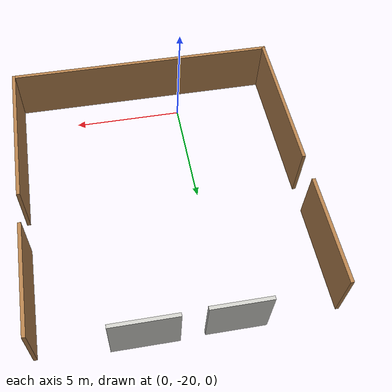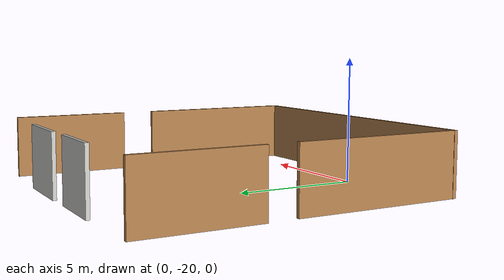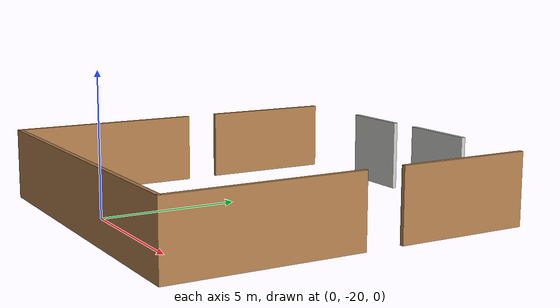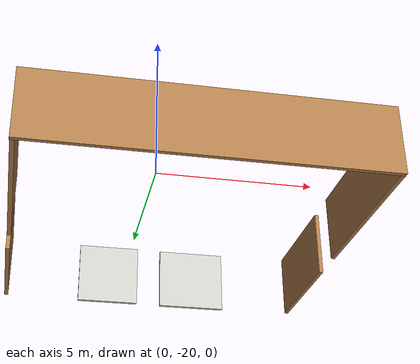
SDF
<?xml version='1.0'?>
<sdf version='1.7'>
  <model name='my_husky_vs_door'>
    <pose>1.57998 -10.6966 0 0 -0 0</pose>
    <link name='Wall_11'>
      <collision name='Wall_11_Collision'>
        <geometry>
          <box>
            <size>4.75 0.15 2.5</size>
          </box>
        </geometry>
        <pose>0 0 1.25 0 -0 0</pose>
      </collision>
      <visual name='Wall_11_Visual'>
        <pose>0 0 1.25 0 -0 0</pose>
        <geometry>
          <box>
            <size>4.75 0.15 2.5</size>
          </box>
        </geometry>
        <material>
          <script>
            <uri>file://media/materials/scripts/gazebo.material</uri>
            <name>Gazebo/Wood</name>
          </script>
          <ambient>1 1 1 1</ambient>
        </material>
        <meta>
          <layer>0</layer>
        </meta>
      </visual>
      <pose>-6.06402 -0.321553 0 0 -0 -1.5708</pose>
    </link>
    <link name='Wall_17'>
      <collision name='Wall_17_Collision'>
        <geometry>
          <box>
            <size>12.25 0.15 2.5</size>
          </box>
        </geometry>
        <pose>0 0 1.25 0 -0 0</pose>
      </collision>
      <visual name='Wall_17_Visual'>
        <pose>0 0 1.25 0 -0 0</pose>
        <geometry>
          <box>
            <size>12.25 0.15 2.5</size>
          </box>
        </geometry>
        <material>
          <script>
            <uri>file://media/materials/scripts/gazebo.material</uri>
            <name>Gazebo/Wood</name>
          </script>
          <ambient>1 1 1 1</ambient>
        </material>
        <meta>
          <layer>0</layer>
        </meta>
      </visual>
      <pose>0.01402 -10.6216 0 0 -0 3.14159</pose>
    </link>
    <link name='Wall_19'>
      <collision name='Wall_19_Collision'>
        <geometry>
          <box>
            <size>6.75 0.15 2.5</size>
          </box>
        </geometry>
        <pose>0 0 1.25 0 -0 0</pose>
      </collision>
      <visual name='Wall_19_Visual'>
        <pose>0 0 1.25 0 -0 0</pose>
        <geometry>
          <box>
            <size>6.75 0.15 2.5</size>
          </box>
        </geometry>
        <material>
          <script>
            <uri>file://media/materials/scripts/gazebo.material</uri>
            <name>Gazebo/Wood</name>
          </script>
          <ambient>1 1 1 1</ambient>
        </material>
        <meta>
          <layer>0</layer>
        </meta>
      </visual>
      <pose>-6.02411 -7.25383 0 0 -0 -1.5708</pose>
    </link>
    <link name='Wall_26'>
      <collision name='Wall_26_Collision'>
        <geometry>
          <box>
            <size>4.75 0.15 2.5</size>
          </box>
        </geometry>
        <pose>0 0 1.25 0 -0 0</pose>
      </collision>
      <visual name='Wall_26_Visual'>
        <pose>0 0 1.25 0 -0 0</pose>
        <geometry>
          <box>
            <size>4.75 0.15 2.5</size>
          </box>
        </geometry>
        <material>
          <script>
            <uri>file://media/materials/scripts/gazebo.material</uri>
            <name>Gazebo/Wood</name>
          </script>
          <ambient>1 1 1 1</ambient>
        </material>
        <meta>
          <layer>0</layer>
        </meta>
      </visual>
      <pose>6.06402 -0.221553 0 0 -0 1.5708</pose>
    </link>
    <link name='Wall_28'>
      <collision name='Wall_28_Collision'>
        <geometry>
          <box>
            <size>6.75 0.15 2.5</size>
          </box>
        </geometry>
        <pose>0 0 1.25 0 -0 0</pose>
      </collision>
      <visual name='Wall_28_Visual'>
        <pose>0 0 1.25 0 -0 0</pose>
        <geometry>
          <box>
            <size>6.75 0.15 2.5</size>
          </box>
        </geometry>
        <material>
          <script>
            <uri>file://media/materials/scripts/gazebo.material</uri>
            <name>Gazebo/Wood</name>
          </script>
          <ambient>1 1 1 1</ambient>
        </material>
        <meta>
          <layer>0</layer>
        </meta>
      </visual>
      <pose>6.06402 -7.32155 0 0 -0 1.5708</pose>
    </link>
    <link name='Wall_7'>
      <collision name='Wall_7_Collision'>
        <geometry>
          <box>
            <size>2.5 0.15 2.5</size>
          </box>
        </geometry>
        <pose>0 0 1.25 0 -0 0</pose>
      </collision>
      <visual name='Wall_7_Visual'>
        <pose>0 0 1.25 0 -0 0</pose>
        <geometry>
          <box>
            <size>2.5 0.15 2.5</size>
          </box>
        </geometry>
        <material>
          <script>
            <uri>file://media/materials/scripts/gazebo.material</uri>
            <name>Gazebo/CeilingTiled</name>
          </script>
          <ambient>0.996078 0.47451 0.0196078 1</ambient>
        </material>
        <meta>
          <layer>0</layer>
        </meta>
      </visual>
      <pose>-1.83531 2.16169 0 0 -0 0</pose>
    </link>
    <link name='Wall_9'>
      <collision name='Wall_9_Collision'>
        <geometry>
          <box>
            <size>2.75 0.15 2.5</size>
          </box>
        </geometry>
        <pose>0 0 1.25 0 -0 0</pose>
      </collision>
      <visual name='Wall_9_Visual'>
        <pose>0 0 1.25 0 -0 0</pose>
        <geometry>
          <box>
            <size>2.75 0.15 2.5</size>
          </box>
        </geometry>
        <material>
          <script>
            <uri>file://media/materials/scripts/gazebo.material</uri>
            <name>Gazebo/CeilingTiled</name>
          </script>
          <ambient>0.996078 0.47451 0.0196078 1</ambient>
        </material>
        <meta>
          <layer>0</layer>
        </meta>
      </visual>
      <pose>1.7931 2.22979 0 0 -0 0</pose>
    </link>
    <static>1</static>
  </model>
</sdf>
